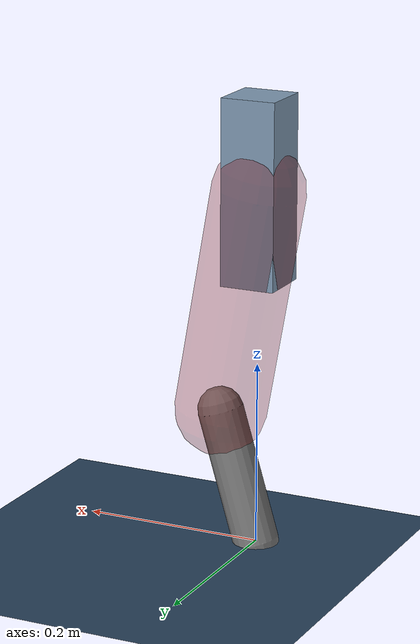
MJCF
<mujoco model="Hopper2D">
	<compiler inertiafromgeom="true" angle="radian" />
	<option timestep="0.001" integrator="implicit" cone="elliptic" solver="Newton" tolerance="1e-10" />

	<default>
		<geom contype="1" conaffinity="1" condim="3" friction="2 0.005 0.0001" solref="0.005 1" />
		<joint limited="true" damping="0.1" />
	</default>

	<asset>
		<texture name="skybox" type="skybox" builtin="gradient" rgb1=".4 .6 .8" rgb2="0 0 0" width="800" height="800" />
		<texture name="grid" type="2d" builtin="checker" rgb1=".1 .2 .3" rgb2=".2 .3 .4" width="300" height="300" mark="edge" markrgb=".2 .3 .4" />
		<material name="ground" texture="grid" texrepeat="1 1" texuniform="true" reflectance="0.1" />
		<material name="leg" rgba="0.5 0.6 0.7 1" />
	</asset>

	<worldbody>

		<geom name="floor" type="plane" size="5 5 0.25" material="ground" />

		<light directional="false" diffuse="0.8 0.8 0.8" specular="0.3 0.3 0.3" pos="0 0 2" dir="0 0 -1" />
		<light mode="targetbodycom" target="base" directional="false" diffuse="0.8 0.8 0.8" specular="0.3 0.3 0.3" pos="0 0 2" dir="0 0 -1" />

		<camera name="fixed" pos="0 -2 1" xyaxes="1 0 0 0 0 1" />
		<camera name="tracking" mode="trackcom" pos="0 -3 1" />

		<body name="root" pos="0 0 0.3900442521017809">
			<joint name="slide_x" type="slide" axis="1 0 0" range="-100 100" />
			<joint name="slide_z" type="slide" axis="0 0 1" range="0 10" />

			<body name="base" pos="0 0 0">
				<geom name="torso" type="box" size="0.03 0.03 0.1" mass="2.748" material="leg" />

				<body name="link1" pos="0 0 0" euler="0 1.3979529747075539 0">
					<joint type="hinge" axis="0 -1 0" pos="0 0 0" name="hinge1" limited="true" range="-3.14 3.14" stiffness="0" damping="0.1" />
					<geom name="thigh" type="capsule" fromto="0 0 0 0.24984202802313865 0 0" size="0.05" rgba="0.5 0 0 0.3" mass="0.8559892728601606" />

					<body name="link2" pos="0.24984202802313865 0 0" euler="0 0.4629696490776205 0">
						<joint type="hinge" axis="0 -1 0" pos="0 0 0" name="hinge2" limited="true" range="-3.14 3.14" stiffness="0" damping="0.1" />
						<geom name="shank" type="capsule" fromto="0 0 0 0.15020222407864225 0 0" size="0.025" mass="0.35788200167077805" />

					</body>
				</body>
			</body>
		</body>
	</worldbody>

	<actuator>
		<motor name="torque1" joint="hinge1" ctrlrange="-135.62005333057763 135.62005333057763" ctrllimited="true" gear="1" />
		<motor name="torque2" joint="hinge2" ctrlrange="-28.878146135162904 28.878146135162904" ctrllimited="true" gear="1" />
	</actuator>
</mujoco>
